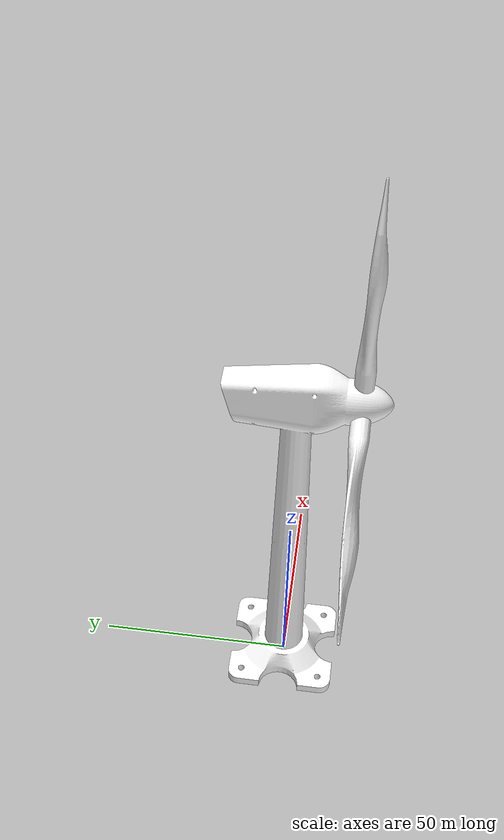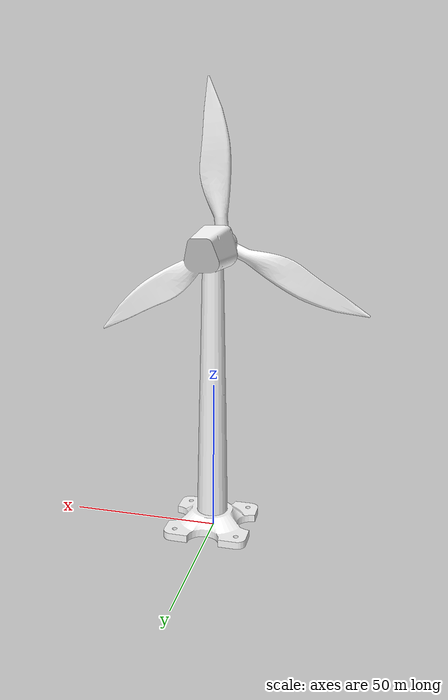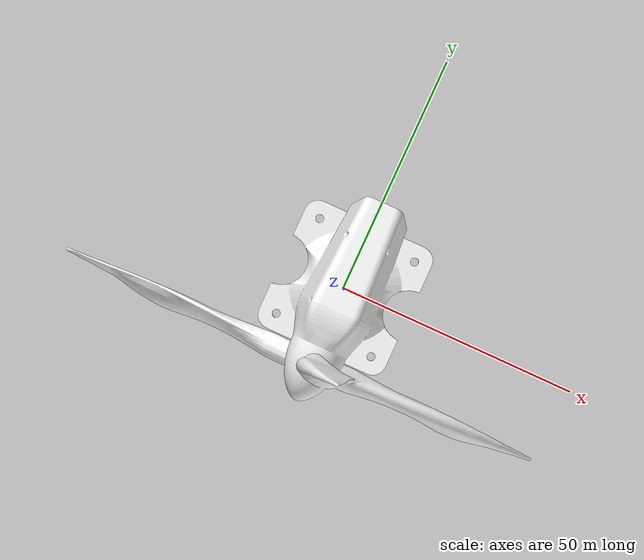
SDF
<?xml version="1.0" ?>
<sdf version="1.6">
  <model name="Molino">
    <static>true</static>
    <link name="link">

      <collision name="collision">
        <geometry>
          <mesh>
            <scale>0.274 0.274 0.274</scale>
            <uri>model://Molino/meshes/Wind_Turbine.stl</uri>
          </mesh>
        </geometry>
      </collision>

      <visual name="visual">
             <cast_shadows>true</cast_shadows>

        <geometry>
          <mesh>
            <scale>0.274 0.274 0.274</scale>
            <uri>model://Molino/meshes/Wind_Turbine.stl</uri>
          </mesh>
        </geometry>
        <material>
           <diffuse>1 1 1 1</diffuse>
        </material>

      </visual>
    <inertial>
      <mass>1.2</mass>
      <inertia>
        <ixx>0.001087473</ixx>
        <iyy>0.001087473</iyy>
        <izz>0.001092437</izz>
        <ixy>0</ixy>
        <ixz>0</ixz>
        <iyz>0</iyz>
      </inertia>
    </inertial>

    </link>
  </model>
</sdf>
